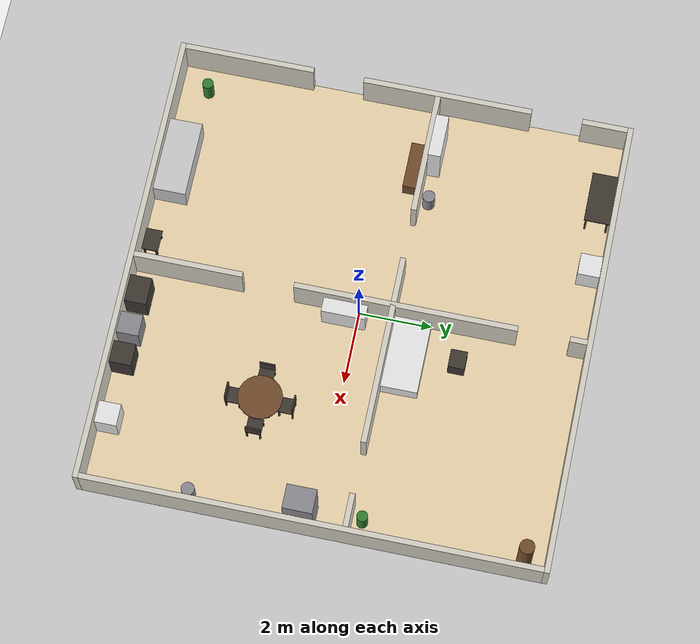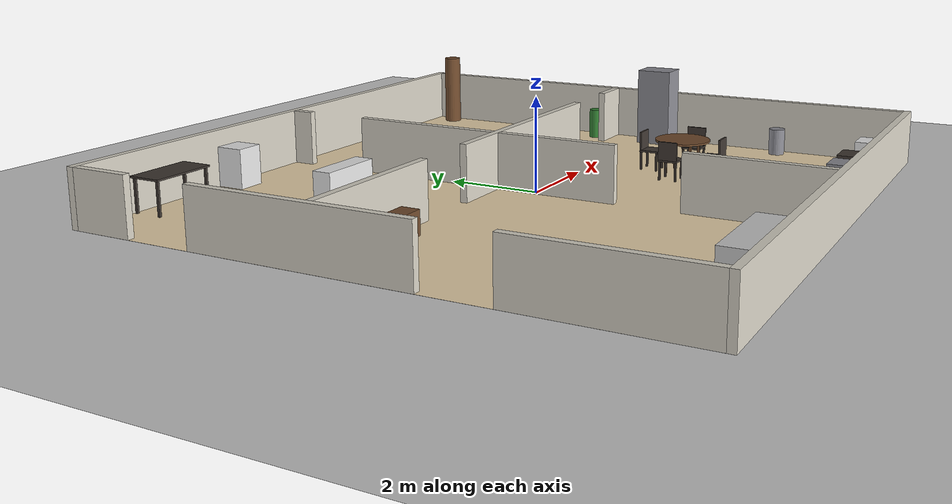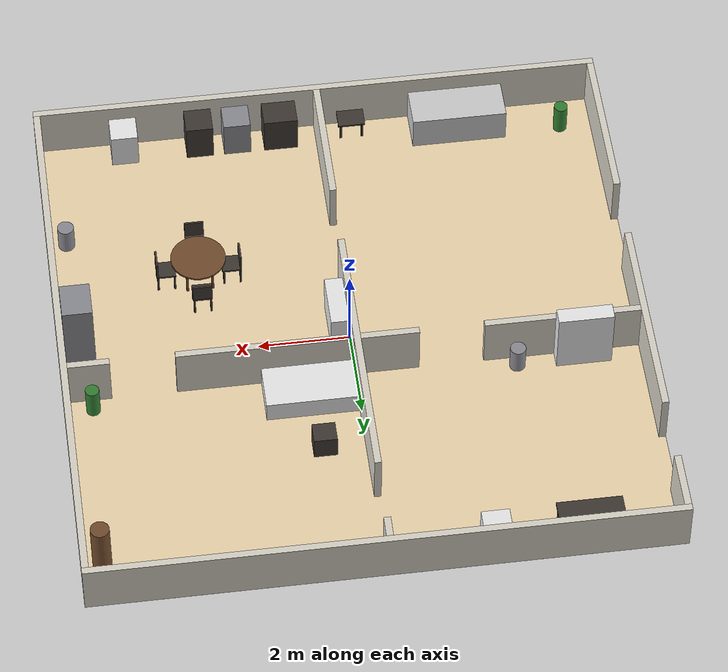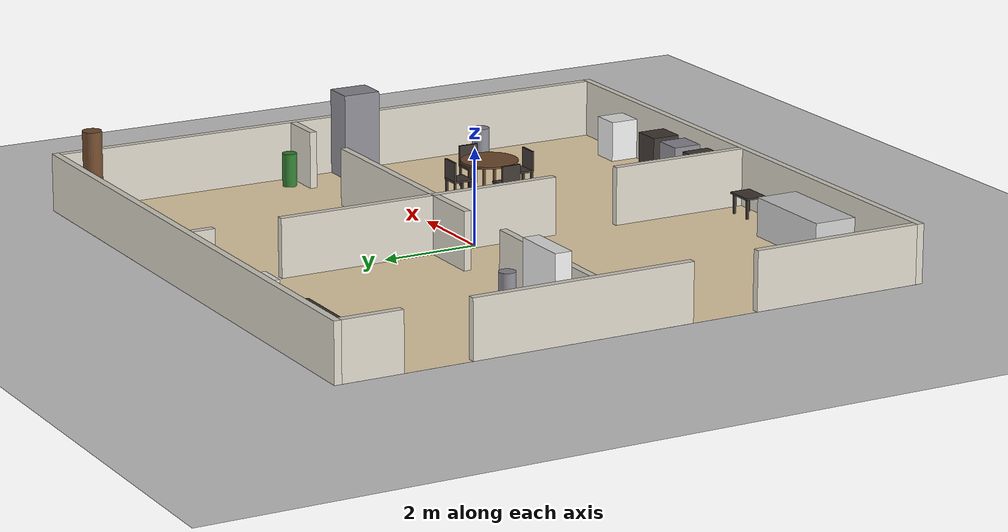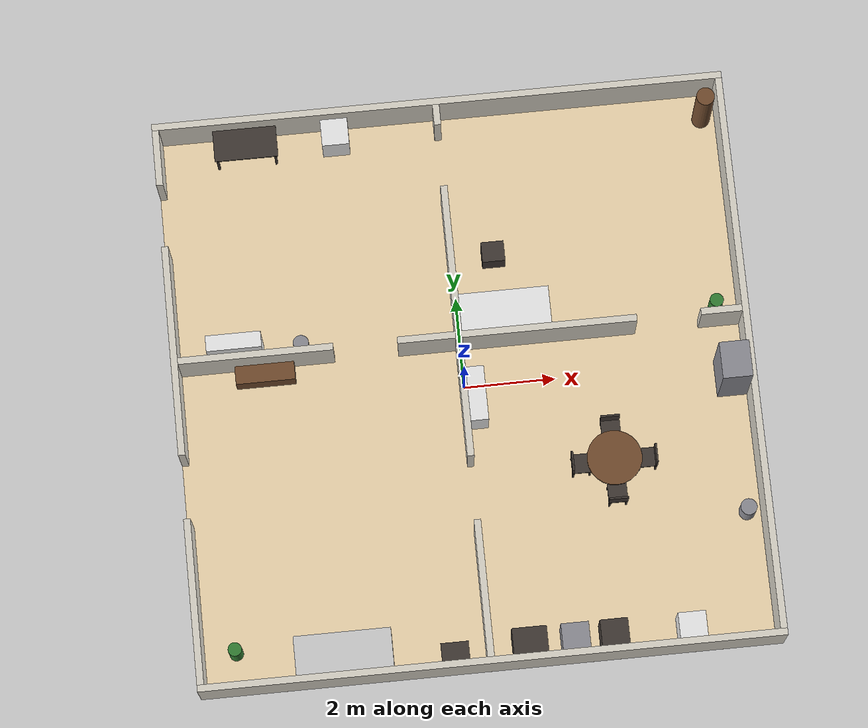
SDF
<?xml version="1.0"?>
<sdf version="1.6">
  <world name="robocup_casa">
    <include><uri>model://sun</uri></include>
    <include><uri>model://ground_plane</uri></include>
    <physics type="ode">
      <max_step_size>0.001</max_step_size>
      <real_time_factor>1.0</real_time_factor>
      <real_time_update_rate>1000</real_time_update_rate>
      <ode><solver><type>quick</type><iters>200</iters></solver></ode>
    </physics>
    <scene><shadows>false</shadows></scene>
    <gui><camera name="user_camera">
      <pose>0.00 -14.11 18.3 0 0.95 1.5708</pose></camera></gui>
    <model name="muros">
      <static>true</static>
      <link name="l0"><pose>0.000 -6.225 0.600 0 0 0.0000</pose>
        <collision name="c"><geometry><box><size>12.600 0.150 1.200</size></box></geometry></collision>
        <visual name="v"><geometry><box><size>12.600 0.150 1.200</size></box></geometry><material><ambient>0.85 0.83 0.78 1</ambient><diffuse>0.85 0.83 0.78 1</diffuse></material></visual>
      </link>
      <link name="l1"><pose>0.000 6.225 0.600 0 0 0.0000</pose>
        <collision name="c"><geometry><box><size>12.600 0.150 1.200</size></box></geometry></collision>
        <visual name="v"><geometry><box><size>12.600 0.150 1.200</size></box></geometry><material><ambient>0.85 0.83 0.78 1</ambient><diffuse>0.85 0.83 0.78 1</diffuse></material></visual>
      </link>
      <link name="l2"><pose>6.225 0.000 0.600 0 0 0.0000</pose>
        <collision name="c"><geometry><box><size>0.150 12.300 1.200</size></box></geometry></collision>
        <visual name="v"><geometry><box><size>0.150 12.300 1.200</size></box></geometry><material><ambient>0.85 0.83 0.78 1</ambient><diffuse>0.85 0.83 0.78 1</diffuse></material></visual>
      </link>
      <link name="l3"><pose>-6.225 -4.356 0.600 0 0 0.0000</pose>
        <collision name="c"><geometry><box><size>0.150 3.588 1.200</size></box></geometry></collision>
        <visual name="v"><geometry><box><size>0.150 3.588 1.200</size></box></geometry><material><ambient>0.85 0.83 0.78 1</ambient><diffuse>0.85 0.83 0.78 1</diffuse></material></visual>
      </link>
      <link name="l4"><pose>-6.225 1.169 0.600 0 0 0.0000</pose>
        <collision name="c"><geometry><box><size>0.150 4.662 1.200</size></box></geometry></collision>
        <visual name="v"><geometry><box><size>0.150 4.662 1.200</size></box></geometry><material><ambient>0.85 0.83 0.78 1</ambient><diffuse>0.85 0.83 0.78 1</diffuse></material></visual>
      </link>
      <link name="l5"><pose>-6.225 5.525 0.600 0 0 0.0000</pose>
        <collision name="c"><geometry><box><size>0.150 1.250 1.200</size></box></geometry></collision>
        <visual name="v"><geometry><box><size>0.150 1.250 1.200</size></box></geometry><material><ambient>0.85 0.83 0.78 1</ambient><diffuse>0.85 0.83 0.78 1</diffuse></material></visual>
      </link>
      <link name="l6"><pose>-0.035 -4.664 0.600 0 0 0.0000</pose>
        <collision name="c"><geometry><box><size>0.150 2.972 1.200</size></box></geometry></collision>
        <visual name="v"><geometry><box><size>0.150 2.972 1.200</size></box></geometry><material><ambient>0.85 0.83 0.78 1</ambient><diffuse>0.85 0.83 0.78 1</diffuse></material></visual>
      </link>
      <link name="l7"><pose>-0.035 1.253 0.600 0 0 0.0000</pose>
        <collision name="c"><geometry><box><size>0.150 6.062 1.200</size></box></geometry></collision>
        <visual name="v"><geometry><box><size>0.150 6.062 1.200</size></box></geometry><material><ambient>0.85 0.83 0.78 1</ambient><diffuse>0.85 0.83 0.78 1</diffuse></material></visual>
      </link>
      <link name="l8"><pose>-0.035 5.917 0.600 0 0 0.0000</pose>
        <collision name="c"><geometry><box><size>0.150 0.466 1.200</size></box></geometry></collision>
        <visual name="v"><geometry><box><size>0.150 0.466 1.200</size></box></geometry><material><ambient>0.85 0.83 0.78 1</ambient><diffuse>0.85 0.83 0.78 1</diffuse></material></visual>
      </link>
      <link name="l9"><pose>-4.461 0.917 0.600 0 0 0.0000</pose>
        <collision name="c"><geometry><box><size>3.378 0.150 1.200</size></box></geometry></collision>
        <visual name="v"><geometry><box><size>3.378 0.150 1.200</size></box></geometry><material><ambient>0.85 0.83 0.78 1</ambient><diffuse>0.85 0.83 0.78 1</diffuse></material></visual>
      </link>
      <link name="l10"><pose>1.239 0.917 0.600 0 0 0.0000</pose>
        <collision name="c"><geometry><box><size>5.222 0.150 1.200</size></box></geometry></collision>
        <visual name="v"><geometry><box><size>5.222 0.150 1.200</size></box></geometry><material><ambient>0.85 0.83 0.78 1</ambient><diffuse>0.85 0.83 0.78 1</diffuse></material></visual>
      </link>
      <link name="l11"><pose>5.700 0.917 0.600 0 0 0.0000</pose>
        <collision name="c"><geometry><box><size>0.900 0.150 1.200</size></box></geometry></collision>
        <visual name="v"><geometry><box><size>0.900 0.150 1.200</size></box></geometry><material><ambient>0.85 0.83 0.78 1</ambient><diffuse>0.85 0.83 0.78 1</diffuse></material></visual>
      </link>
    </model>
    <model name="piso_casa">
      <static>true</static>
      <link name="l"><pose>0.000 0.000 0.0005 0 0 0</pose>
        <visual name="v"><geometry><box><size>12.6 12.6 0.001</size></box></geometry><material><ambient>0.93 0.84 0.68 1</ambient><diffuse>0.93 0.84 0.68 1</diffuse></material></visual>
      </link>
    </model>
    <model name="laundry_table">
      <static>true</static>
      <link name="l0"><pose>-4.298 5.800 0.730 0 0 0.0000</pose>
        <collision name="c"><geometry><box><size>1.400 0.700 0.040</size></box></geometry></collision>
        <visual name="v"><geometry><box><size>1.400 0.700 0.040</size></box></geometry><material><ambient>0.25 0.22 0.20 1</ambient><diffuse>0.25 0.22 0.20 1</diffuse></material></visual>
      </link>
      <link name="l1"><pose>-4.938 5.510 0.355 0 0 0.0000</pose>
        <collision name="c"><geometry><box><size>0.050 0.050 0.710</size></box></geometry></collision>
        <visual name="v"><geometry><box><size>0.050 0.050 0.710</size></box></geometry><material><ambient>0.25 0.22 0.20 1</ambient><diffuse>0.25 0.22 0.20 1</diffuse></material></visual>
      </link>
      <link name="l2"><pose>-4.938 6.090 0.355 0 0 0.0000</pose>
        <collision name="c"><geometry><box><size>0.050 0.050 0.710</size></box></geometry></collision>
        <visual name="v"><geometry><box><size>0.050 0.050 0.710</size></box></geometry><material><ambient>0.25 0.22 0.20 1</ambient><diffuse>0.25 0.22 0.20 1</diffuse></material></visual>
      </link>
      <link name="l3"><pose>-3.658 5.510 0.355 0 0 0.0000</pose>
        <collision name="c"><geometry><box><size>0.050 0.050 0.710</size></box></geometry></collision>
        <visual name="v"><geometry><box><size>0.050 0.050 0.710</size></box></geometry><material><ambient>0.25 0.22 0.20 1</ambient><diffuse>0.25 0.22 0.20 1</diffuse></material></visual>
      </link>
      <link name="l4"><pose>-3.658 6.090 0.355 0 0 0.0000</pose>
        <collision name="c"><geometry><box><size>0.050 0.050 0.710</size></box></geometry></collision>
        <visual name="v"><geometry><box><size>0.050 0.050 0.710</size></box></geometry><material><ambient>0.25 0.22 0.20 1</ambient><diffuse>0.25 0.22 0.20 1</diffuse></material></visual>
      </link>
    </model>
    <model name="washing_machine">
      <static>true</static>
      <link name="l0"><pose>-2.310 5.850 0.425 0 0 0.0000</pose>
        <collision name="c"><geometry><box><size>0.600 0.600 0.850</size></box></geometry></collision>
        <visual name="v"><geometry><box><size>0.600 0.600 0.850</size></box></geometry><material><ambient>0.92 0.92 0.92 1</ambient><diffuse>0.92 0.92 0.92 1</diffuse></material></visual>
      </link>
    </model>
    <model name="shelf">
      <static>true</static>
      <link name="l0"><pose>-4.900 1.167 0.750 0 0 0.0000</pose>
        <collision name="c"><geometry><box><size>1.200 0.350 1.500</size></box></geometry></collision>
        <visual name="v"><geometry><box><size>1.200 0.350 1.500</size></box></geometry><material><ambient>0.92 0.92 0.92 1</ambient><diffuse>0.92 0.92 0.92 1</diffuse></material></visual>
      </link>
    </model>
    <model name="laundry_trash_bin">
      <static>true</static>
      <link name="l0"><pose>-3.472 1.212 0.300 0 0 0.0000</pose>
        <collision name="c"><geometry><cylinder><radius>0.170</radius><length>0.600</length></cylinder></geometry></collision>
        <visual name="v"><geometry><cylinder><radius>0.170</radius><length>0.600</length></cylinder></geometry><material><ambient>0.55 0.55 0.58 1</ambient><diffuse>0.55 0.55 0.58 1</diffuse></material></visual>
      </link>
    </model>
    <model name="bed">
      <static>true</static>
      <link name="l0"><pose>1.040 1.492 0.250 0 0 0.0000</pose>
        <collision name="c"><geometry><box><size>2.000 1.000 0.500</size></box></geometry></collision>
        <visual name="v"><geometry><box><size>2.000 1.000 0.500</size></box></geometry><material><ambient>0.92 0.92 0.92 1</ambient><diffuse>0.92 0.92 0.92 1</diffuse></material></visual>
      </link>
    </model>
    <model name="bedside_table">
      <static>true</static>
      <link name="l0"><pose>0.910 2.870 0.275 0 0 0.0000</pose>
        <collision name="c"><geometry><box><size>0.500 0.450 0.550</size></box></geometry></collision>
        <visual name="v"><geometry><box><size>0.500 0.450 0.550</size></box></geometry><material><ambient>0.25 0.22 0.20 1</ambient><diffuse>0.25 0.22 0.20 1</diffuse></material></visual>
      </link>
    </model>
    <model name="coat_rack">
      <static>true</static>
      <link name="l0"><pose>5.850 5.600 0.850 0 0 0.0000</pose>
        <collision name="c"><geometry><cylinder><radius>0.200</radius><length>1.700</length></cylinder></geometry></collision>
        <visual name="v"><geometry><cylinder><radius>0.200</radius><length>1.700</length></cylinder></geometry><material><ambient>0.45 0.30 0.18 1</ambient><diffuse>0.45 0.30 0.18 1</diffuse></material></visual>
      </link>
    </model>
    <model name="planta_bedroom">
      <static>true</static>
      <link name="l0"><pose>5.670 1.262 0.350 0 0 0.0000</pose>
        <collision name="c"><geometry><cylinder><radius>0.150</radius><length>0.700</length></cylinder></geometry></collision>
        <visual name="v"><geometry><cylinder><radius>0.150</radius><length>0.700</length></cylinder></geometry><material><ambient>0.20 0.50 0.20 1</ambient><diffuse>0.20 0.50 0.20 1</diffuse></material></visual>
      </link>
    </model>
    <model name="tv_stand">
      <static>true</static>
      <link name="l0"><pose>-4.312 0.642 0.250 0 0 0.0000</pose>
        <collision name="c"><geometry><box><size>1.300 0.400 0.500</size></box></geometry></collision>
        <visual name="v"><geometry><box><size>1.300 0.400 0.500</size></box></geometry><material><ambient>0.45 0.30 0.18 1</ambient><diffuse>0.45 0.30 0.18 1</diffuse></material></visual>
      </link>
    </model>
    <model name="sofa">
      <static>true</static>
      <link name="l0"><pose>-3.150 -5.700 0.400 0 0 0.0000</pose>
        <collision name="c"><geometry><box><size>2.100 0.900 0.800</size></box></geometry></collision>
        <visual name="v"><geometry><box><size>2.100 0.900 0.800</size></box></geometry><material><ambient>0.80 0.80 0.80 1</ambient><diffuse>0.80 0.80 0.80 1</diffuse></material></visual>
      </link>
    </model>
    <model name="coffee_table">
      <static>true</static>
      <link name="l0"><pose>-0.770 -5.880 0.430 0 0 0.0000</pose>
        <collision name="c"><geometry><box><size>0.600 0.450 0.040</size></box></geometry></collision>
        <visual name="v"><geometry><box><size>0.600 0.450 0.040</size></box></geometry><material><ambient>0.25 0.22 0.20 1</ambient><diffuse>0.25 0.22 0.20 1</diffuse></material></visual>
      </link>
      <link name="l1"><pose>-1.010 -6.045 0.205 0 0 0.0000</pose>
        <collision name="c"><geometry><box><size>0.050 0.050 0.410</size></box></geometry></collision>
        <visual name="v"><geometry><box><size>0.050 0.050 0.410</size></box></geometry><material><ambient>0.25 0.22 0.20 1</ambient><diffuse>0.25 0.22 0.20 1</diffuse></material></visual>
      </link>
      <link name="l2"><pose>-1.010 -5.715 0.205 0 0 0.0000</pose>
        <collision name="c"><geometry><box><size>0.050 0.050 0.410</size></box></geometry></collision>
        <visual name="v"><geometry><box><size>0.050 0.050 0.410</size></box></geometry><material><ambient>0.25 0.22 0.20 1</ambient><diffuse>0.25 0.22 0.20 1</diffuse></material></visual>
      </link>
      <link name="l3"><pose>-0.530 -6.045 0.205 0 0 0.0000</pose>
        <collision name="c"><geometry><box><size>0.050 0.050 0.410</size></box></geometry></collision>
        <visual name="v"><geometry><box><size>0.050 0.050 0.410</size></box></geometry><material><ambient>0.25 0.22 0.20 1</ambient><diffuse>0.25 0.22 0.20 1</diffuse></material></visual>
      </link>
      <link name="l4"><pose>-0.530 -5.715 0.205 0 0 0.0000</pose>
        <collision name="c"><geometry><box><size>0.050 0.050 0.410</size></box></geometry></collision>
        <visual name="v"><geometry><box><size>0.050 0.050 0.410</size></box></geometry><material><ambient>0.25 0.22 0.20 1</ambient><diffuse>0.25 0.22 0.20 1</diffuse></material></visual>
      </link>
    </model>
    <model name="planta_living">
      <static>true</static>
      <link name="l0"><pose>-5.460 -5.390 0.350 0 0 0.0000</pose>
        <collision name="c"><geometry><cylinder><radius>0.150</radius><length>0.700</length></cylinder></geometry></collision>
        <visual name="v"><geometry><cylinder><radius>0.150</radius><length>0.700</length></cylinder></geometry><material><ambient>0.20 0.50 0.20 1</ambient><diffuse>0.20 0.50 0.20 1</diffuse></material></visual>
      </link>
    </model>
    <model name="cabinet">
      <static>true</static>
      <link name="l0"><pose>0.240 -0.350 0.450 0 0 0.0000</pose>
        <collision name="c"><geometry><box><size>0.400 1.200 0.900</size></box></geometry></collision>
        <visual name="v"><geometry><box><size>0.400 1.200 0.900</size></box></geometry><material><ambient>0.92 0.92 0.92 1</ambient><diffuse>0.92 0.92 0.92 1</diffuse></material></visual>
      </link>
    </model>
    <model name="refrigerator">
      <static>true</static>
      <link name="l0"><pose>5.825 -0.350 0.900 0 0 0.0000</pose>
        <collision name="c"><geometry><box><size>0.650 0.800 1.800</size></box></geometry></collision>
        <visual name="v"><geometry><box><size>0.650 0.800 1.800</size></box></geometry><material><ambient>0.55 0.55 0.58 1</ambient><diffuse>0.55 0.55 0.58 1</diffuse></material></visual>
      </link>
    </model>
    <model name="kitchen_trash_bin">
      <static>true</static>
      <link name="l0"><pose>5.850 -3.360 0.300 0 0 0.0000</pose>
        <collision name="c"><geometry><cylinder><radius>0.180</radius><length>0.600</length></cylinder></geometry></collision>
        <visual name="v"><geometry><cylinder><radius>0.180</radius><length>0.600</length></cylinder></geometry><material><ambient>0.55 0.55 0.58 1</ambient><diffuse>0.55 0.55 0.58 1</diffuse></material></visual>
      </link>
    </model>
    <model name="dinner_table">
      <static>true</static>
      <link name="l0"><pose>3.066 -2.030 0.730 0 0 0.0000</pose>
        <collision name="c"><geometry><cylinder><radius>0.600</radius><length>0.040</length></cylinder></geometry></collision>
        <visual name="v"><geometry><cylinder><radius>0.600</radius><length>0.040</length></cylinder></geometry><material><ambient>0.45 0.30 0.18 1</ambient><diffuse>0.45 0.30 0.18 1</diffuse></material></visual>
      </link>
      <link name="l1"><pose>2.790 -2.306 0.355 0 0 0.0000</pose>
        <collision name="c"><geometry><box><size>0.050 0.050 0.710</size></box></geometry></collision>
        <visual name="v"><geometry><box><size>0.050 0.050 0.710</size></box></geometry><material><ambient>0.45 0.30 0.18 1</ambient><diffuse>0.45 0.30 0.18 1</diffuse></material></visual>
      </link>
      <link name="l2"><pose>2.790 -1.754 0.355 0 0 0.0000</pose>
        <collision name="c"><geometry><box><size>0.050 0.050 0.710</size></box></geometry></collision>
        <visual name="v"><geometry><box><size>0.050 0.050 0.710</size></box></geometry><material><ambient>0.45 0.30 0.18 1</ambient><diffuse>0.45 0.30 0.18 1</diffuse></material></visual>
      </link>
      <link name="l3"><pose>3.342 -2.306 0.355 0 0 0.0000</pose>
        <collision name="c"><geometry><box><size>0.050 0.050 0.710</size></box></geometry></collision>
        <visual name="v"><geometry><box><size>0.050 0.050 0.710</size></box></geometry><material><ambient>0.45 0.30 0.18 1</ambient><diffuse>0.45 0.30 0.18 1</diffuse></material></visual>
      </link>
      <link name="l4"><pose>3.342 -1.754 0.355 0 0 0.0000</pose>
        <collision name="c"><geometry><box><size>0.050 0.050 0.710</size></box></geometry></collision>
        <visual name="v"><geometry><box><size>0.050 0.050 0.710</size></box></geometry><material><ambient>0.45 0.30 0.18 1</ambient><diffuse>0.45 0.30 0.18 1</diffuse></material></visual>
      </link>
    </model>
    <model name="counter">
      <static>true</static>
      <link name="l0"><pose>0.840 -5.850 0.450 0 0 0.0000</pose>
        <collision name="c"><geometry><box><size>0.750 0.600 0.900</size></box></geometry></collision>
        <visual name="v"><geometry><box><size>0.750 0.600 0.900</size></box></geometry><material><ambient>0.25 0.22 0.20 1</ambient><diffuse>0.25 0.22 0.20 1</diffuse></material></visual>
      </link>
    </model>
    <model name="sink">
      <static>true</static>
      <link name="l0"><pose>1.820 -5.850 0.450 0 0 0.0000</pose>
        <collision name="c"><geometry><box><size>0.600 0.600 0.900</size></box></geometry></collision>
        <visual name="v"><geometry><box><size>0.600 0.600 0.900</size></box></geometry><material><ambient>0.55 0.55 0.58 1</ambient><diffuse>0.55 0.55 0.58 1</diffuse></material></visual>
      </link>
    </model>
    <model name="cooking_table">
      <static>true</static>
      <link name="l0"><pose>2.660 -5.850 0.450 0 0 0.0000</pose>
        <collision name="c"><geometry><box><size>0.600 0.600 0.900</size></box></geometry></collision>
        <visual name="v"><geometry><box><size>0.600 0.600 0.900</size></box></geometry><material><ambient>0.25 0.22 0.20 1</ambient><diffuse>0.25 0.22 0.20 1</diffuse></material></visual>
      </link>
    </model>
    <model name="dishwasher">
      <static>true</static>
      <link name="l0"><pose>4.340 -5.850 0.425 0 0 0.0000</pose>
        <collision name="c"><geometry><box><size>0.600 0.600 0.850</size></box></geometry></collision>
        <visual name="v"><geometry><box><size>0.600 0.600 0.850</size></box></geometry><material><ambient>0.92 0.92 0.92 1</ambient><diffuse>0.92 0.92 0.92 1</diffuse></material></visual>
      </link>
    </model>
    <model name="silla_n">
      <static>true</static>
      <link name="l0"><pose>3.066 -1.310 0.430 0 0 -1.5708</pose>
        <collision name="c"><geometry><box><size>0.420 0.420 0.040</size></box></geometry></collision>
        <visual name="v"><geometry><box><size>0.420 0.420 0.040</size></box></geometry><material><ambient>0.25 0.22 0.20 1</ambient><diffuse>0.25 0.22 0.20 1</diffuse></material></visual>
      </link>
      <link name="l1"><pose>2.886 -1.130 0.205 0 0 -1.5708</pose>
        <collision name="c"><geometry><box><size>0.040 0.040 0.410</size></box></geometry></collision>
        <visual name="v"><geometry><box><size>0.040 0.040 0.410</size></box></geometry><material><ambient>0.25 0.22 0.20 1</ambient><diffuse>0.25 0.22 0.20 1</diffuse></material></visual>
      </link>
      <link name="l2"><pose>3.246 -1.130 0.205 0 0 -1.5708</pose>
        <collision name="c"><geometry><box><size>0.040 0.040 0.410</size></box></geometry></collision>
        <visual name="v"><geometry><box><size>0.040 0.040 0.410</size></box></geometry><material><ambient>0.25 0.22 0.20 1</ambient><diffuse>0.25 0.22 0.20 1</diffuse></material></visual>
      </link>
      <link name="l3"><pose>2.886 -1.490 0.205 0 0 -1.5708</pose>
        <collision name="c"><geometry><box><size>0.040 0.040 0.410</size></box></geometry></collision>
        <visual name="v"><geometry><box><size>0.040 0.040 0.410</size></box></geometry><material><ambient>0.25 0.22 0.20 1</ambient><diffuse>0.25 0.22 0.20 1</diffuse></material></visual>
      </link>
      <link name="l4"><pose>3.246 -1.490 0.205 0 0 -1.5708</pose>
        <collision name="c"><geometry><box><size>0.040 0.040 0.410</size></box></geometry></collision>
        <visual name="v"><geometry><box><size>0.040 0.040 0.410</size></box></geometry><material><ambient>0.25 0.22 0.20 1</ambient><diffuse>0.25 0.22 0.20 1</diffuse></material></visual>
      </link>
      <link name="l5"><pose>3.066 -1.120 0.650 0 0 -1.5708</pose>
        <collision name="c"><geometry><box><size>0.040 0.420 0.400</size></box></geometry></collision>
        <visual name="v"><geometry><box><size>0.040 0.420 0.400</size></box></geometry><material><ambient>0.25 0.22 0.20 1</ambient><diffuse>0.25 0.22 0.20 1</diffuse></material></visual>
      </link>
    </model>
    <model name="silla_s">
      <static>true</static>
      <link name="l0"><pose>3.066 -2.750 0.430 0 0 1.5708</pose>
        <collision name="c"><geometry><box><size>0.420 0.420 0.040</size></box></geometry></collision>
        <visual name="v"><geometry><box><size>0.420 0.420 0.040</size></box></geometry><material><ambient>0.25 0.22 0.20 1</ambient><diffuse>0.25 0.22 0.20 1</diffuse></material></visual>
      </link>
      <link name="l1"><pose>3.246 -2.930 0.205 0 0 1.5708</pose>
        <collision name="c"><geometry><box><size>0.040 0.040 0.410</size></box></geometry></collision>
        <visual name="v"><geometry><box><size>0.040 0.040 0.410</size></box></geometry><material><ambient>0.25 0.22 0.20 1</ambient><diffuse>0.25 0.22 0.20 1</diffuse></material></visual>
      </link>
      <link name="l2"><pose>2.886 -2.930 0.205 0 0 1.5708</pose>
        <collision name="c"><geometry><box><size>0.040 0.040 0.410</size></box></geometry></collision>
        <visual name="v"><geometry><box><size>0.040 0.040 0.410</size></box></geometry><material><ambient>0.25 0.22 0.20 1</ambient><diffuse>0.25 0.22 0.20 1</diffuse></material></visual>
      </link>
      <link name="l3"><pose>3.246 -2.570 0.205 0 0 1.5708</pose>
        <collision name="c"><geometry><box><size>0.040 0.040 0.410</size></box></geometry></collision>
        <visual name="v"><geometry><box><size>0.040 0.040 0.410</size></box></geometry><material><ambient>0.25 0.22 0.20 1</ambient><diffuse>0.25 0.22 0.20 1</diffuse></material></visual>
      </link>
      <link name="l4"><pose>2.886 -2.570 0.205 0 0 1.5708</pose>
        <collision name="c"><geometry><box><size>0.040 0.040 0.410</size></box></geometry></collision>
        <visual name="v"><geometry><box><size>0.040 0.040 0.410</size></box></geometry><material><ambient>0.25 0.22 0.20 1</ambient><diffuse>0.25 0.22 0.20 1</diffuse></material></visual>
      </link>
      <link name="l5"><pose>3.066 -2.940 0.650 0 0 1.5708</pose>
        <collision name="c"><geometry><box><size>0.040 0.420 0.400</size></box></geometry></collision>
        <visual name="v"><geometry><box><size>0.040 0.420 0.400</size></box></geometry><material><ambient>0.25 0.22 0.20 1</ambient><diffuse>0.25 0.22 0.20 1</diffuse></material></visual>
      </link>
    </model>
    <model name="silla_o">
      <static>true</static>
      <link name="l0"><pose>2.346 -2.030 0.430 0 0 0.0000</pose>
        <collision name="c"><geometry><box><size>0.420 0.420 0.040</size></box></geometry></collision>
        <visual name="v"><geometry><box><size>0.420 0.420 0.040</size></box></geometry><material><ambient>0.25 0.22 0.20 1</ambient><diffuse>0.25 0.22 0.20 1</diffuse></material></visual>
      </link>
      <link name="l1"><pose>2.166 -2.210 0.205 0 0 0.0000</pose>
        <collision name="c"><geometry><box><size>0.040 0.040 0.410</size></box></geometry></collision>
        <visual name="v"><geometry><box><size>0.040 0.040 0.410</size></box></geometry><material><ambient>0.25 0.22 0.20 1</ambient><diffuse>0.25 0.22 0.20 1</diffuse></material></visual>
      </link>
      <link name="l2"><pose>2.166 -1.850 0.205 0 0 0.0000</pose>
        <collision name="c"><geometry><box><size>0.040 0.040 0.410</size></box></geometry></collision>
        <visual name="v"><geometry><box><size>0.040 0.040 0.410</size></box></geometry><material><ambient>0.25 0.22 0.20 1</ambient><diffuse>0.25 0.22 0.20 1</diffuse></material></visual>
      </link>
      <link name="l3"><pose>2.526 -2.210 0.205 0 0 0.0000</pose>
        <collision name="c"><geometry><box><size>0.040 0.040 0.410</size></box></geometry></collision>
        <visual name="v"><geometry><box><size>0.040 0.040 0.410</size></box></geometry><material><ambient>0.25 0.22 0.20 1</ambient><diffuse>0.25 0.22 0.20 1</diffuse></material></visual>
      </link>
      <link name="l4"><pose>2.526 -1.850 0.205 0 0 0.0000</pose>
        <collision name="c"><geometry><box><size>0.040 0.040 0.410</size></box></geometry></collision>
        <visual name="v"><geometry><box><size>0.040 0.040 0.410</size></box></geometry><material><ambient>0.25 0.22 0.20 1</ambient><diffuse>0.25 0.22 0.20 1</diffuse></material></visual>
      </link>
      <link name="l5"><pose>2.156 -2.030 0.650 0 0 0.0000</pose>
        <collision name="c"><geometry><box><size>0.040 0.420 0.400</size></box></geometry></collision>
        <visual name="v"><geometry><box><size>0.040 0.420 0.400</size></box></geometry><material><ambient>0.25 0.22 0.20 1</ambient><diffuse>0.25 0.22 0.20 1</diffuse></material></visual>
      </link>
    </model>
    <model name="silla_e">
      <static>true</static>
      <link name="l0"><pose>3.786 -2.030 0.430 0 0 3.1416</pose>
        <collision name="c"><geometry><box><size>0.420 0.420 0.040</size></box></geometry></collision>
        <visual name="v"><geometry><box><size>0.420 0.420 0.040</size></box></geometry><material><ambient>0.25 0.22 0.20 1</ambient><diffuse>0.25 0.22 0.20 1</diffuse></material></visual>
      </link>
      <link name="l1"><pose>3.966 -1.850 0.205 0 0 3.1416</pose>
        <collision name="c"><geometry><box><size>0.040 0.040 0.410</size></box></geometry></collision>
        <visual name="v"><geometry><box><size>0.040 0.040 0.410</size></box></geometry><material><ambient>0.25 0.22 0.20 1</ambient><diffuse>0.25 0.22 0.20 1</diffuse></material></visual>
      </link>
      <link name="l2"><pose>3.966 -2.210 0.205 0 0 3.1416</pose>
        <collision name="c"><geometry><box><size>0.040 0.040 0.410</size></box></geometry></collision>
        <visual name="v"><geometry><box><size>0.040 0.040 0.410</size></box></geometry><material><ambient>0.25 0.22 0.20 1</ambient><diffuse>0.25 0.22 0.20 1</diffuse></material></visual>
      </link>
      <link name="l3"><pose>3.606 -1.850 0.205 0 0 3.1416</pose>
        <collision name="c"><geometry><box><size>0.040 0.040 0.410</size></box></geometry></collision>
        <visual name="v"><geometry><box><size>0.040 0.040 0.410</size></box></geometry><material><ambient>0.25 0.22 0.20 1</ambient><diffuse>0.25 0.22 0.20 1</diffuse></material></visual>
      </link>
      <link name="l4"><pose>3.606 -2.210 0.205 0 0 3.1416</pose>
        <collision name="c"><geometry><box><size>0.040 0.040 0.410</size></box></geometry></collision>
        <visual name="v"><geometry><box><size>0.040 0.040 0.410</size></box></geometry><material><ambient>0.25 0.22 0.20 1</ambient><diffuse>0.25 0.22 0.20 1</diffuse></material></visual>
      </link>
      <link name="l5"><pose>3.976 -2.030 0.650 0 0 3.1416</pose>
        <collision name="c"><geometry><box><size>0.040 0.420 0.400</size></box></geometry></collision>
        <visual name="v"><geometry><box><size>0.040 0.420 0.400</size></box></geometry><material><ambient>0.25 0.22 0.20 1</ambient><diffuse>0.25 0.22 0.20 1</diffuse></material></visual>
      </link>
    </model>
  </world>
</sdf>
